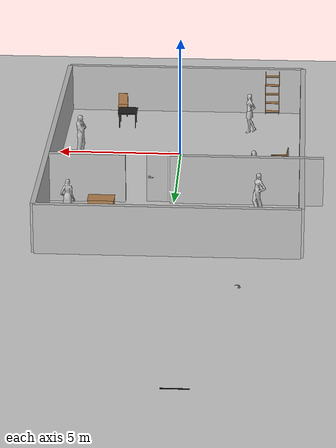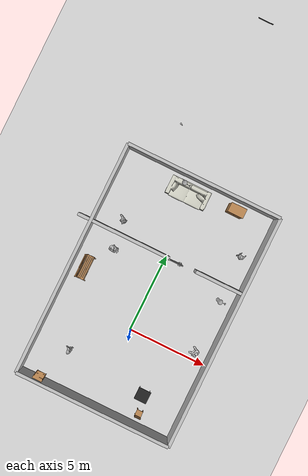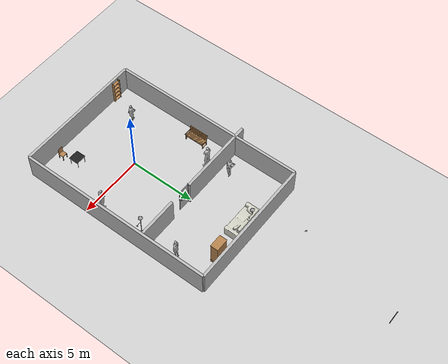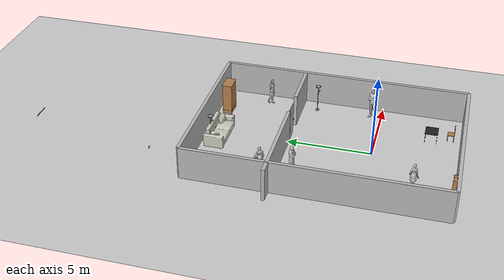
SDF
<sdf version="1.6">
 <world name="default">
  <physics name="default_physics" default="0" type="ode">
   <ode>
    <solver>
     <type>quick</type>
     <iters>20</iters>
     <sor>1</sor>
     <use_dynamic_moi_rescaling>0</use_dynamic_moi_rescaling>
    </solver>
    <constraints>
     <cfm>0</cfm>
     <erp>0.2</erp>
     <contact_max_correcting_vel>100</contact_max_correcting_vel>
     <contact_surface_layer>0</contact_surface_layer>
    </constraints>
   </ode>
   <real_time_update_rate>1000</real_time_update_rate>
   <max_step_size>0.001</max_step_size>
   <real_time_factor>1</real_time_factor>
  </physics>
  <light name="sun" type="directional">
   <pose>0 0 10 0 -0 0</pose>
   <diffuse>0.8 0.8 0.8 1</diffuse>
   <specular>0.2 0.2 0.2 1</specular>
   <attenuation>
    <range>1000</range>
    <constant>0.9</constant>
    <linear>0.01</linear>
    <quadratic>0.001</quadratic>
   </attenuation>
   <direction>-0.5 0.1 -0.9</direction>
  </light>
  <model name="ground_plane">
   <static>1</static>
   <link name="link">
    <collision name="collision">
     <geometry><plane><normal>0 0 1</normal><size>100 100</size></plane></geometry>
     <surface>
      <contact><collide_bitmask>65535</collide_bitmask></contact>
      <friction><ode><mu>100</mu><mu2>50</mu2></ode></friction>
     </surface>
    </collision>
    <visual name="visual">
     <cast_shadows>0</cast_shadows>
     <geometry><plane><normal>0 0 1</normal><size>100 100</size></plane></geometry>
     <material>
      <script><uri>file://media/materials/scripts/gazebo.material</uri><name>Gazebo/Grey</name></script>
     </material>
    </visual>
   </link>
  </model>
  <model name="wall_1_model">
   <pose>0 -5 1 0 -0 0</pose>
   <static>1</static>
   <link name="wall_1_body">
    <inertial>
     <mass>1</mass>
     <inertia><ixx>1</ixx><ixy>0</ixy><ixz>0</ixz><iyy>1</iyy><iyz>0</iyz><izz>1</izz></inertia>
    </inertial>
    <collision name="collision"><geometry><box><size>10 0.2 2</size></box></geometry></collision>
    <visual name="visual"><geometry><box><size>10 0.2 2</size></box></geometry></visual>
   </link>
  </model>
  <model name="wall_2_model">
   <pose>0 10 1 0 -0 0</pose>
   <static>1</static>
   <link name="wall_2_body">
    <inertial>
     <mass>1</mass>
     <inertia><ixx>1</ixx><ixy>0</ixy><ixz>0</ixz><iyy>1</iyy><iyz>0</iyz><izz>1</izz></inertia>
    </inertial>
    <collision name="collision"><geometry><box><size>10 0.2 2</size></box></geometry></collision>
    <visual name="visual"><geometry><box><size>10 0.2 2</size></box></geometry></visual>
   </link>
  </model>
  <model name="wall_3_model">
   <pose>-5 2.5 1 0 -0 0</pose>
   <static>1</static>
   <link name="wall_3_body">
    <inertial>
     <mass>1</mass>
     <inertia><ixx>1</ixx><ixy>0</ixy><ixz>0</ixz><iyy>1</iyy><iyz>0</iyz><izz>1</izz></inertia>
    </inertial>
    <collision name="collision"><geometry><box><size>0.2 15 2</size></box></geometry></collision>
    <visual name="visual"><geometry><box><size>0.2 15 2</size></box></geometry></visual>
   </link>
  </model>
  <model name="wall_4_model">
   <pose>5 2.5 1 0 -0 0</pose>
   <static>1</static>
   <link name="wall_4_body">
    <inertial>
     <mass>1</mass>
     <inertia><ixx>1</ixx><ixy>0</ixy><ixz>0</ixz><iyy>1</iyy><iyz>0</iyz><izz>1</izz></inertia>
    </inertial>
    <collision name="collision"><geometry><box><size>0.2 15 2</size></box></geometry></collision>
    <visual name="visual"><geometry><box><size>0.2 15 2</size></box></geometry></visual>
   </link>
  </model>
  <model name="wall_5_model">
   <pose>-2.84137 5 1 0 -0 0</pose>
   <static>1</static>
   <link name="wall_5_body">
    <inertial>
     <mass>1</mass>
     <inertia><ixx>1</ixx><ixy>0</ixy><ixz>0</ixz><iyy>1</iyy><iyz>0</iyz><izz>1</izz></inertia>
    </inertial>
    <collision name="collision"><geometry><box><size>6 0.2 2</size></box></geometry></collision>
    <visual name="visual"><geometry><box><size>6 0.2 2</size></box></geometry></visual>
   </link>
  </model>
  <model name="wall_6_model">
   <pose>3.40222 4.98467 1 0 -0 0</pose>
   <static>1</static>
   <link name="wall_6_body">
    <inertial>
     <mass>1</mass>
     <inertia><ixx>1</ixx><ixy>0</ixy><ixz>0</ixz><iyy>1</iyy><iyz>0</iyz><izz>1</izz></inertia>
    </inertial>
    <collision name="collision"><geometry><box><size>3 0.2 2</size></box></geometry></collision>
    <visual name="visual"><geometry><box><size>3 0.2 2</size></box></geometry></visual>
   </link>
  </model>
  <model name="dining_chair">
   <static>1</static>
   <link name="link">
    <collision name="colision1">
     <geometry><mesh><uri>model://dining_chair/meshes/dining_chair.stl</uri><scale>1 1 1</scale></mesh></geometry>
    </collision>
    <visual name="visual1">
     <geometry><mesh><uri>model://dining_chair/meshes/dining_chair.stl</uri><scale>1 1 1</scale></mesh></geometry>
     <material>
      <script><uri>file://media/materials/scripts/gazebo.material</uri><name>Gazebo/Wood</name></script>
     </material>
    </visual>
    <velocity_decay><linear>0</linear><angular>0</angular></velocity_decay>
   </link>
   <pose>2.5 -4.5 0.01 0 -0 0</pose>
  </model>
  <model name="kitchen_table">
   <static>1</static>
   <link name="link">
    <collision name="colision1">
     <geometry>
      <mesh><uri>model://kitchen_table/meshes/kitchen_table.stl</uri><scale>1 1 1</scale></mesh>
     </geometry>
    </collision>
    <visual name="visual1">
     <geometry>
      <mesh><uri>model://kitchen_table/meshes/kitchen_table.stl</uri><scale>1 1 1</scale></mesh>
     </geometry>
     <material>
      <script><uri>file://media/materials/scripts/gazebo.material</uri><name>Gazebo/FlatBlack</name></script>
     </material>
    </visual>
    <velocity_decay><linear>0</linear><angular>0</angular></velocity_decay>
   </link>
   <pose>2 -3.55106 0 0 -0 0</pose>
  </model>
  <model name="wardrobe">
   <static>1</static>
   <link name="link">
    <collision name="colision1">
     <geometry><mesh><uri>model://wardrobe/meshes/wardrobe.stl</uri><scale>1 1 1</scale></mesh></geometry>
    </collision>
    <visual name="visual1">
     <geometry><mesh><uri>model://wardrobe/meshes/wardrobe.stl</uri><scale>1 1 1</scale></mesh></geometry>
     <material>
      <script><uri>file://media/materials/scripts/gazebo.material</uri><name>Gazebo/WoodPallet</name></script>
     </material>
    </visual>
    <velocity_decay><linear>0</linear><angular>0</angular></velocity_decay>
   </link>
   <pose>2 9 0 0 -0 0</pose>
  </model>
  <model name="closet">
   <static>1</static>
   <link name="link">
    <collision name="colision1">
     <geometry><mesh><uri>model://closet/meshes/closet.stl</uri><scale>1 1 1</scale></mesh></geometry>
    </collision>
    <visual name="visual1">
     <geometry><mesh><uri>model://closet/meshes/closet.stl</uri><scale>1 1 1</scale></mesh></geometry>
     <material>
      <script><uri>file://media/materials/scripts/gazebo.material</uri><name>Gazebo/WoodFloor</name></script>
     </material>
    </visual>
    <velocity_decay><linear>0</linear><angular>0</angular></velocity_decay>
   </link>
   <pose>-4 -5 0 0 -0 0</pose>
  </model>
  <model name="bench">
   <static>1</static>
   <link name="link">
    <collision name="colision1">
     <geometry><mesh><uri>model://bench/meshes/bench.stl</uri><scale>1 1 1</scale></mesh></geometry>
    </collision>
    <visual name="visual1">
     <geometry><mesh><uri>model://bench/meshes/bench.stl</uri><scale>1 1 1</scale></mesh></geometry>
     <material>
      <script><uri>file://media/materials/scripts/gazebo.material</uri><name>Gazebo/Wood</name></script>
     </material>
    </visual>
    <velocity_decay><linear>0</linear><angular>0</angular></velocity_decay>
   </link>
   <pose>-4.46543 1.50271 0 0 -0 0</pose>
  </model>
  <model name="sofa">
   <static>1</static>
   <link name="link">
    <collision name="colision1">
     <geometry><mesh><uri>model://sofa/meshes/sofa.stl</uri><scale>1 1 1</scale></mesh></geometry>
    </collision>
    <visual name="visual1">
     <geometry><mesh><uri>model://sofa/meshes/sofa.stl</uri><scale>1 1 1</scale></mesh></geometry>
     <material>
      <script><uri>file://media/materials/scripts/gazebo.material</uri><name>Gazebo/PaintedWall</name></script>
     </material>
    </visual>
    <velocity_decay><linear>0</linear><angular>0</angular></velocity_decay>
   </link>
   <pose>-0.518195 9 0 0 -0 0</pose>
  </model>
  <model name="floor_lamp_0">
   <static>1</static>
   <link name="link">
    <collision name="colision1">
     <geometry><mesh><uri>model://floor_lamp/meshes/floor_lamp.stl</uri><scale>1 1 1</scale></mesh></geometry>
    </collision>
    <visual name="visual1">
     <geometry><mesh><uri>model://floor_lamp/meshes/floor_lamp.stl</uri><scale>1 1 1</scale></mesh></geometry>
     <material>
      <script><uri>file://media/materials/scripts/gazebo.material</uri><name>Gazebo/Grey</name></script>
     </material>
    </visual>
    <velocity_decay><linear>0</linear><angular>0</angular></velocity_decay>
   </link>
   <pose>-1 9.41735 0 0 -0 0</pose>
  </model>
  <model name="floor_lamp_1">
   <static>1</static>
   <link name="link">
    <collision name="colision1">
     <geometry><mesh><uri>model://floor_lamp/meshes/floor_lamp.stl</uri><scale>1 1 1</scale></mesh></geometry>
    </collision>
    <visual name="visual1">
     <geometry><mesh><uri>model://floor_lamp/meshes/floor_lamp.stl</uri><scale>1 1 1</scale></mesh></geometry>
     <material>
      <script><uri>file://media/materials/scripts/gazebo.material</uri><name>Gazebo/Grey</name></script>
     </material>
    </visual>
    <velocity_decay><linear>0</linear><angular>0</angular></velocity_decay>
   </link>
   <pose>4 4 0 0 -0 0</pose>
  </model>
  <model name="male03">
   <link name="link">
    <inertial>
     <mass>20</mass>
     <inertia><ixx>0</ixx><ixy>0</ixy><ixz>0</ixz><iyy>0</iyy><iyz>0</iyz><izz>0</izz></inertia>
    </inertial>
    <collision name="collision">
     <geometry><mesh><uri>model://citizen_extras_male_03/meshes/mesh.dae</uri></mesh></geometry>
    </collision>
    <visual name="visual">
     <geometry><mesh><uri>model://citizen_extras_male_03/meshes/mesh.dae</uri></mesh></geometry>
    </visual>
   </link>
   <pose>4 0.53 0.010902 0.012558 0.002318 -1.718</pose>
  </model>
  <light name="male03light" type="point">
   <pose>3.6 0.53 1.6 0 -0 0</pose>
   <diffuse>0.5 0.5 0.5 1</diffuse>
   <specular>0.1 0.1 0.1 1</specular>
   <attenuation>
    <range>1</range>
    <linear>0.01</linear>
    <constant>0.3</constant>
    <quadratic>0</quadratic>
   </attenuation>
   <direction>0 0 -1</direction>
   <spot><inner_angle>0.6</inner_angle><outer_angle>0.8</outer_angle><falloff>1.2</falloff></spot>
   <cast_shadows>0</cast_shadows>
  </light>
  <model name="female02">
   <link name="link">
    <inertial>
     <mass>20</mass>
     <inertia><ixx>0</ixx><ixy>0</ixy><ixz>0</ixz><iyy>0</iyy><iyz>0</iyz><izz>0</izz></inertia>
    </inertial>
    <collision name="collision">
     <geometry><mesh><uri>model://citizen_extras_female_02/meshes/mesh.dae</uri></mesh></geometry>
    </collision>
    <visual name="visual">
     <geometry><mesh><uri>model://citizen_extras_female_02/meshes/mesh.dae</uri></mesh></geometry>
    </visual>
   </link>
   <pose>-2.84 -2.63 0.000427 0.001609 -0.025081 1.68295</pose>
  </model>
  <light name="female02light" type="point">
   <pose>-2.5 -2.63 1.5 0 -0 0</pose>
   <diffuse>0.5 0.5 0.5 1</diffuse>
   <specular>0.1 0.1 0.1 1</specular>
   <attenuation>
    <range>1</range>
    <linear>0.01</linear>
    <constant>0.3</constant>
    <quadratic>0</quadratic>
   </attenuation>
   <direction>0 0 -1</direction>
   <spot><inner_angle>0.6</inner_angle><outer_angle>0.8</outer_angle><falloff>1.2</falloff></spot>
   <cast_shadows>0</cast_shadows>
  </light>
  <model name="female03">
   <link name="link">
    <inertial>
     <mass>20</mass>
     <inertia><ixx>0</ixx><ixy>0</ixy><ixz>0</ixz><iyy>0</iyy><iyz>0</iyz><izz>0</izz></inertia>
    </inertial>
    <collision name="collision">
     <geometry><mesh><uri>model://citizen_extras_female_03/meshes/mesh.dae</uri></mesh></geometry>
    </collision>
    <visual name="visual">
     <geometry><mesh><uri>model://citizen_extras_female_03/meshes/mesh.dae</uri></mesh></geometry>
    </visual>
   </link>
   <pose>-3.3 5.8 -0.003501 0.011366 0.012675 1.64515</pose>
  </model>
  <light name="female03light" type="point">
   <pose>-3 6.2 1.5 0 -0 0</pose>
   <diffuse>0.5 0.5 0.5 1</diffuse>
   <specular>0.1 0.1 0.1 1</specular>
   <attenuation>
    <range>1</range>
    <linear>0.01</linear>
    <constant>0.3</constant>
    <quadratic>0</quadratic>
   </attenuation>
   <direction>0 0 -1</direction>
   <spot><inner_angle>0.6</inner_angle><outer_angle>0.8</outer_angle><falloff>1.2</falloff></spot>
   <cast_shadows>0</cast_shadows>
  </light>
  <model name="female02bis">
   <link name="link">
    <inertial>
     <mass>20</mass>
     <inertia><ixx>0</ixx><ixy>0</ixy><ixz>0</ixz><iyy>0</iyy><iyz>0</iyz><izz>0</izz></inertia>
    </inertial>
    <collision name="collision">
     <geometry><mesh><uri>model://citizen_extras_female_02/meshes/mesh.dae</uri></mesh></geometry>
    </collision>
    <visual name="visual">
     <geometry><mesh><uri>model://citizen_extras_female_02/meshes/mesh.dae</uri></mesh></geometry>
    </visual>
   </link>
   <pose>3.99997 7.00001 0.000427 0.001615 -0.025131 -0.000182</pose>
  </model>
  <light name="female02bislight" type="point">
   <pose>3.8 6.7 1.5 0 -0 0</pose>
   <diffuse>0.5 0.5 0.5 1</diffuse>
   <specular>0.1 0.1 0.1 1</specular>
   <attenuation>
    <range>1</range>
    <linear>0.01</linear>
    <constant>0.3</constant>
    <quadratic>0</quadratic>
   </attenuation>
   <direction>0 0 -1</direction>
   <spot><inner_angle>0.6</inner_angle><outer_angle>0.8</outer_angle><falloff>1.2</falloff></spot>
   <cast_shadows>0</cast_shadows>
  </light>
  <model name="male03bis">
   <link name="link">
    <inertial>
     <mass>20</mass>
     <inertia><ixx>0</ixx><ixy>0</ixy><ixz>0</ixz><iyy>0</iyy><iyz>0</iyz><izz>0</izz></inertia>
    </inertial>
    <collision name="collision">
     <geometry><mesh><uri>model://citizen_extras_male_03/meshes/mesh.dae</uri></mesh></geometry>
    </collision>
    <visual name="visual">
     <geometry><mesh><uri>model://citizen_extras_male_03/meshes/mesh.dae</uri></mesh></geometry>
    </visual>
   </link>
   <pose>-2.99993 3.99987 0.010907 0.012577 0.002292 0.000158</pose>
  </model>
  <light name="male03bislight" type="point">
   <pose>-2.9 3.7 1.5 0 -0 0</pose>
   <diffuse>0.5 0.5 0.5 1</diffuse>
   <specular>0.1 0.1 0.1 1</specular>
   <attenuation>
    <range>1</range>
    <linear>0.01</linear>
    <constant>0.3</constant>
    <quadratic>0</quadratic>
   </attenuation>
   <direction>0 0 -1</direction>
   <spot><inner_angle>0.6</inner_angle><outer_angle>0.8</outer_angle><falloff>1.2</falloff></spot>
   <cast_shadows>0</cast_shadows>
  </light>
  <gravity>0 0 -9.81</gravity>
  <magnetic_field>6e-06 2.3e-05 -4.2e-05</magnetic_field>
  <atmosphere type="adiabatic"/>
  <scene><ambient>0.4 0.4 0.4 1</ambient><background>0.7 0.7 0.7 1</background><shadows>1</shadows></scene>
  <spherical_coordinates>
   <surface_model>EARTH_WGS84</surface_model>
   <latitude_deg>0</latitude_deg>
   <longitude_deg>0</longitude_deg>
   <elevation>0</elevation>
   <heading_deg>0</heading_deg>
  </spherical_coordinates>
  <model name="door_obstacle">
   <static>1</static>
   <link name="door_obstacle_link">
    <collision name="door_obstacle_collision">
     <pose>0 0 0.0075 0 -0 0</pose>
     <geometry><box><size>1 0.05 0.015</size></box></geometry>
    </collision>
    <visual name="door_obstacle_visual">
     <pose>0 0 0.0075 0 -0 0</pose>
     <geometry><box><size>1 0.05 0.015</size></box></geometry>
     <material>
      <script><uri>file://media/materials/scripts/gazebo.material</uri><name>Gazebo/Black</name></script>
     </material>
    </visual>
    <velocity_decay><linear>0</linear><angular>0</angular></velocity_decay>
   </link>
   <pose>-0.86194 20.5964 0 0 -0 0</pose>
  </model>
  <model name="door_handle">
   <link name="handle">
    <collision name="collision">
     <geometry><mesh><uri>model://door_handle/meshes/door_handle.dae</uri></mesh></geometry>
    </collision>
    <visual name="visual">
     <geometry><mesh><uri>model://door_handle/meshes/door_handle.dae</uri></mesh></geometry>
    </visual>
    <inertial>
     <inertia><ixx>1</ixx><ixy>0</ixy><ixz>0</ixz><iyy>1</iyy><iyz>0</iyz><izz>1</izz></inertia>
     <mass>1</mass>
    </inertial>
   </link>
   <pose>-2.77802 12.6731 0.000781 0.015486 0.000297 -0.390197</pose>
  </model>
  <model name="drc_practice_weighted_door">
   <link name="frame">
    <pose>0.06 -0.0005 0 0 -0 0</pose>
    <inertial>
     <pose>-0.025145 -0.03429 1.0541 0 -0 0</pose>
     <mass>19</mass>
     <inertia>
      <ixx>7.04458</ixx>
      <ixy>0</ixy>
      <ixz>0</ixz>
      <iyy>7.04114</iyy>
      <iyz>0</iyz>
      <izz>0.0114511</izz>
     </inertia>
    </inertial>
    <collision name="collision_2">
     <pose>-0.025145 -0.03429 1.0541 0 -0 0</pose>
     <geometry><box><size>0.05029 0.06858 2.1082</size></box></geometry>
    </collision>
    <visual name="visual">
     <pose>-0.025145 -0.03429 1.0541 0 -0 0</pose>
     <geometry><box><size>0.05029 0.06858 2.1082</size></box></geometry>
     <material>
      <script><uri>file://media/materials/scripts/gazebo.material</uri><name>Gazebo/White</name></script>
     </material>
    </visual>
   </link>
   <link name="door">
    <pose>-0 0 2.04 3.14159 -0 0</pose>
    <inertial>
     <mass>41.3256</mass>
     <pose>0.4569 0.0349 1.016 0 -0 0</pose>
     <inertia><ixx>14.2263</ixx><ixy>0</ixy><ixz>0</ixz><iyy>17.099</iyy><iyz>0</iyz><izz>2.88626</izz></inertia>
    </inertial>
    <collision name="collision">
     <pose>0.4569 0.0349 1.016 0 -0 0</pose>
     <geometry><box><size>0.9144 0.04445 2.032</size></box></geometry>
    </collision>
    <visual name="visual">
     <pose>0 -0.06858 0 0 -0 0</pose>
     <geometry><mesh><uri>model://hinged_door/meshes/door.dae</uri></mesh></geometry>
    </visual>
   </link>
   <link name="handles">
    <pose>0.8144 -0.07 1.05 0 -0 3.14159</pose>
    <inertial>
     <pose>0 -0.035 0 0 -0 0</pose>
     <mass>2</mass>
     <inertia>
      <ixx>0.0110115</ixx>
      <ixy>-0</ixy>
      <ixz>-0.00647057</ixz>
      <iyy>0.0190181</iyy>
      <iyz>0</iyz>
      <izz>0.00824372</izz>
     </inertia>
    </inertial>
    <collision name="handle1_collision">
     <pose>0.015 -0.015 0 -1.57 0 0</pose>
     <geometry><mesh><uri>model://door_handle/meshes/handle.dae</uri></mesh></geometry>
    </collision>
    <visual name="handle1_visual">
     <pose>0.015 -0.015 0 -1.57 0 0</pose>
     <geometry><mesh><uri>model://door_handle/meshes/handle.dae</uri></mesh></geometry>
    </visual>
    <collision name="handle2_collision">
     <pose>0.015 -0.055 0 1.57 -0 0</pose>
     <geometry><mesh><uri>model://door_handle/meshes/handle.dae</uri></mesh></geometry>
    </collision>
    <visual name="handle2_visual">
     <pose>0.015 -0.055 0 1.57 -0 0</pose>
     <geometry><mesh><uri>model://door_handle/meshes/handle.dae</uri></mesh></geometry>
    </visual>
   </link>
   <joint name="handle" type="revolute">
    <parent>door</parent>
    <child>handles</child>
    <pose>0.015 0 0 0 -0 0</pose>
    <axis>
     <xyz>0 1 0</xyz>
     <limit><lower>-1.58</lower><upper>0</upper></limit>
     <dynamics>
      <damping>1</damping>
      <friction>10</friction>
      <spring_reference>0</spring_reference>
      <spring_stiffness>0</spring_stiffness>
     </dynamics>
     <use_parent_model_frame>1</use_parent_model_frame>
     <use_parent_model_frame>1</use_parent_model_frame>
    </axis>
    <physics><ode><cfm_damping>1</cfm_damping><limit><cfm>0</cfm><erp>0.2</erp></limit></ode></physics>
   </joint>
   <joint name="hinge" type="revolute">
    <parent>frame</parent>
    <child>door</child>
    <axis>
     <xyz>0 0 1</xyz>
     <limit><lower>-1.58</lower><upper>0</upper></limit>
     <dynamics>
      <damping>15.5365</damping>
      <friction>15.5365</friction>
      <spring_reference>0</spring_reference>
      <spring_stiffness>0</spring_stiffness>
     </dynamics>
     <use_parent_model_frame>1</use_parent_model_frame>
     <use_parent_model_frame>1</use_parent_model_frame>
    </axis>
    <physics><ode><cfm_damping>1</cfm_damping><limit><cfm>0</cfm><erp>0.2</erp></limit></ode></physics>
   </joint>
   <joint name="world_joint" type="revolute">
    <child>frame</child>
    <parent>world</parent>
    <axis>
     <limit><lower>0</lower><upper>0</upper></limit>
     <xyz>0 1 0</xyz>
     <dynamics>
      <damping>1</damping>
      <spring_reference>0</spring_reference>
      <spring_stiffness>0</spring_stiffness>
     </dynamics>
     <use_parent_model_frame>1</use_parent_model_frame>
     <use_parent_model_frame>1</use_parent_model_frame>
    </axis>
    <physics><ode><cfm_damping>1</cfm_damping><limit><cfm>0</cfm><erp>0.2</erp></limit></ode></physics>
   </joint>
   <pose>0.167665 4.97339 0 0 -0 0</pose>
  </model>
 </world>
</sdf>
